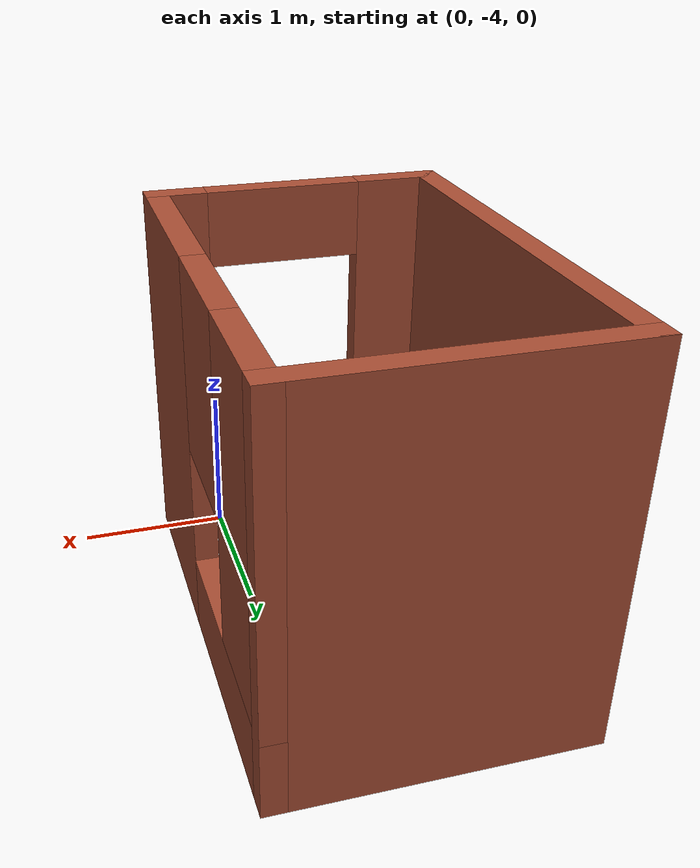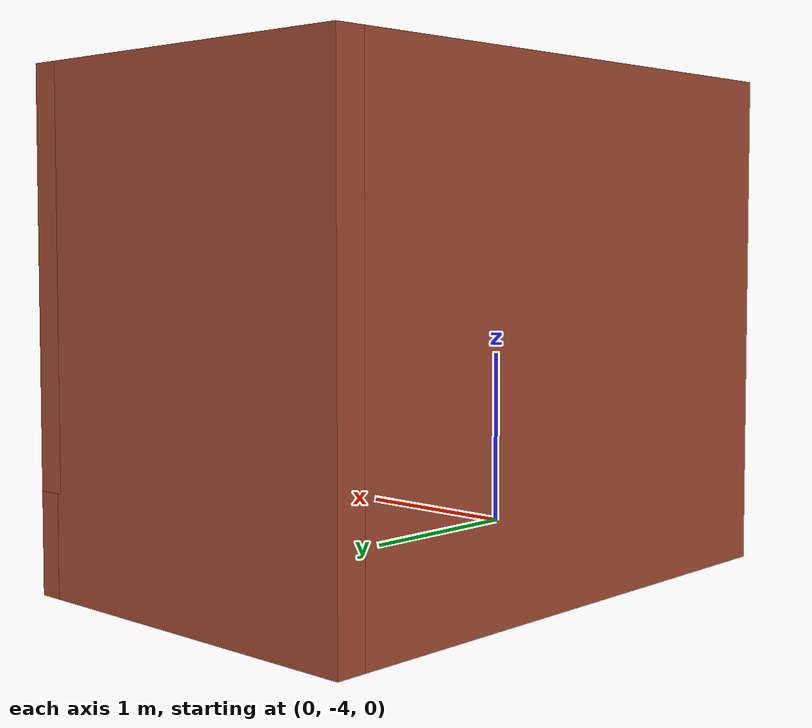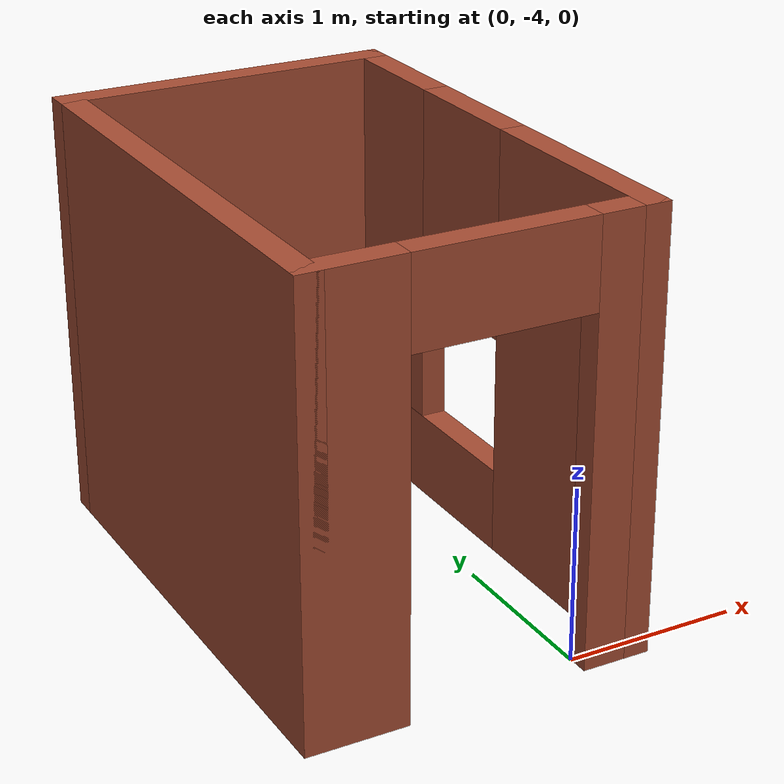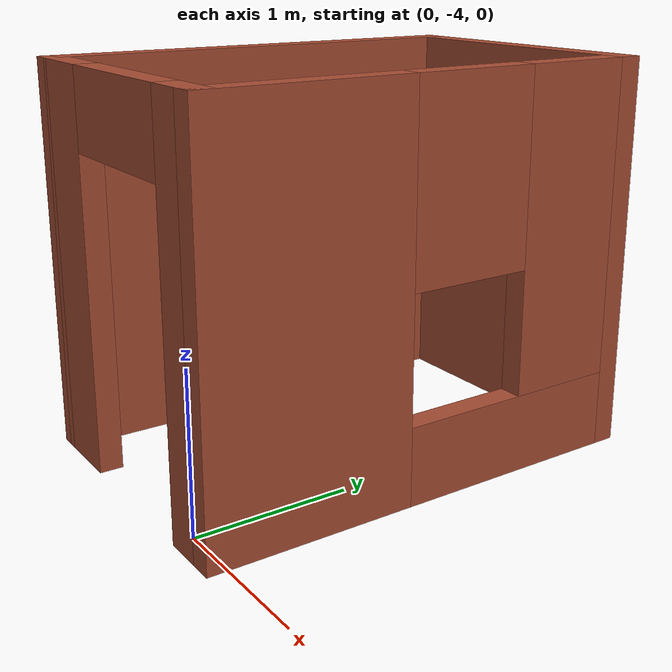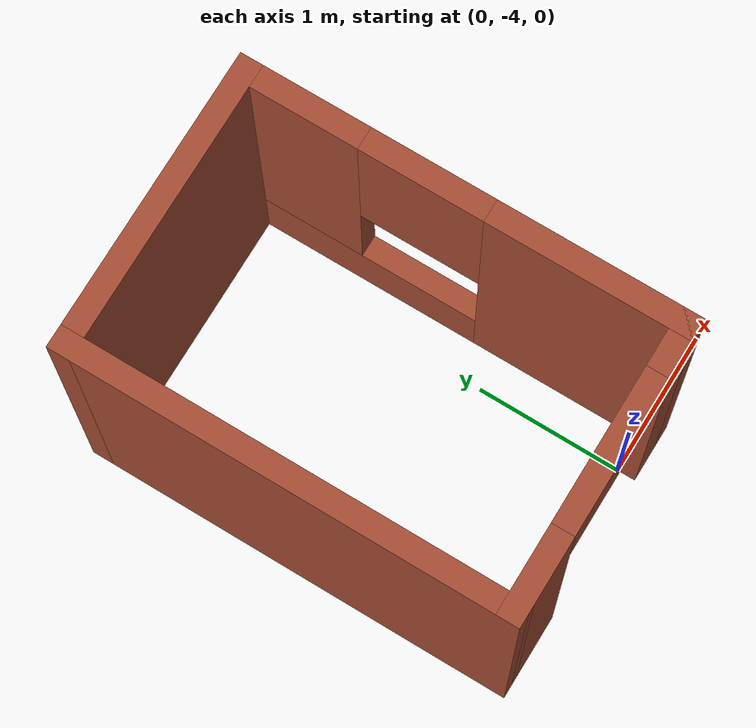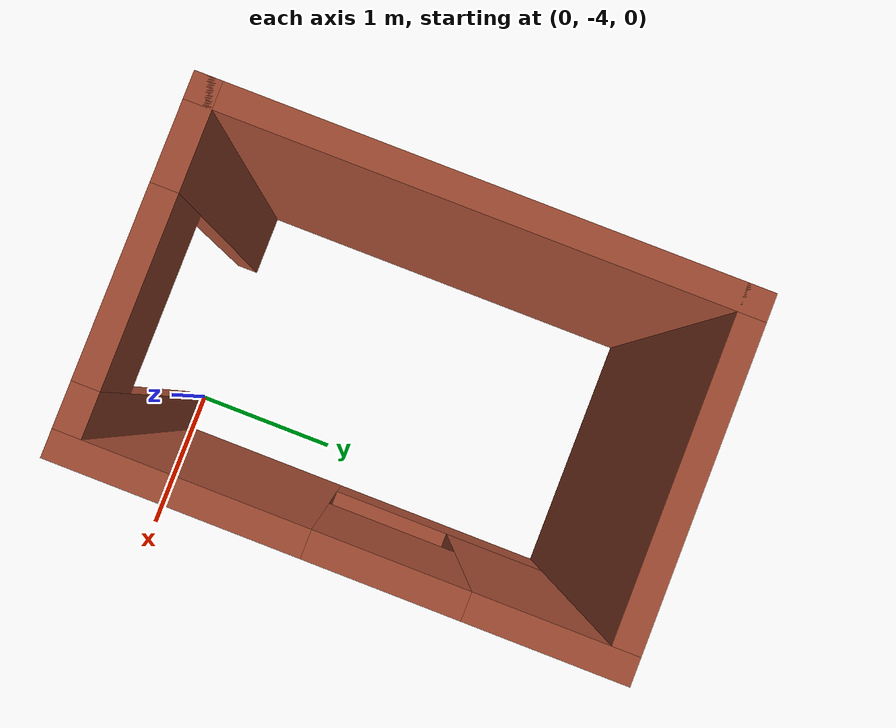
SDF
<?xml version='1.0'?>
<sdf version='1.7'>
  <model name='test_world'>
    <pose>-0.605 -2.0625 0 0 -0 0</pose>
    <link name='Wall_0'>
      <collision name='Wall_0_Collision'>
        <geometry>
          <box>
            <size>3 0.15 2.5</size>
          </box>
        </geometry>
        <pose>0 0 1.25 0 -0 0</pose>
      </collision>
      <visual name='Wall_0_Visual'>
        <pose>0 0 1.25 0 -0 0</pose>
        <geometry>
          <box>
            <size>3 0.15 2.5</size>
          </box>
        </geometry>
        <material>
          <script>
            <uri>file://media/materials/scripts/gazebo.material</uri>
            <name>Gazebo/Bricks</name>
          </script>
          <ambient>1 1 1 1</ambient>
        </material>
        <meta>
          <layer>0</layer>
        </meta>
      </visual>
      <pose>-0.925 -0.5625 0 0 -0 -1.5708</pose>
    </link>
    <link name='Wall_1'>
      <pose>-0 -1.9875 0 0 -0 0</pose>
      <visual name='Wall_1_Visual_0'>
        <pose>-0.708181 0 1.25 0 -0 0</pose>
        <geometry>
          <box>
            <size>0.583638 0.15 2.5</size>
          </box>
        </geometry>
        <material>
          <script>
            <uri>file://media/materials/scripts/gazebo.material</uri>
            <name>Gazebo/Bricks</name>
          </script>
          <ambient>1 1 1 1</ambient>
        </material>
        <meta>
          <layer>0</layer>
        </meta>
      </visual>
      <collision name='Wall_1_Collision_0'>
        <geometry>
          <box>
            <size>0.583638 0.15 2.5</size>
          </box>
        </geometry>
        <pose>-0.708181 0 1.25 0 -0 0</pose>
      </collision>
      <visual name='Wall_1_Visual_1'>
        <pose>0.802654 0 1.25 0 -0 0</pose>
        <geometry>
          <box>
            <size>0.394692 0.15 2.5</size>
          </box>
        </geometry>
        <material>
          <script>
            <uri>file://media/materials/scripts/gazebo.material</uri>
            <name>Gazebo/Bricks</name>
          </script>
          <ambient>1 1 1 1</ambient>
        </material>
        <meta>
          <layer>0</layer>
        </meta>
      </visual>
      <collision name='Wall_1_Collision_1'>
        <geometry>
          <box>
            <size>0.394692 0.15 2.5</size>
          </box>
        </geometry>
        <pose>0.802654 0 1.25 0 -0 0</pose>
      </collision>
      <visual name='Wall_1_Visual_2'>
        <pose>0.094473 0 2.25 0 -0 0</pose>
        <geometry>
          <box>
            <size>1.02167 0.15 0.5</size>
          </box>
        </geometry>
        <material>
          <script>
            <uri>file://media/materials/scripts/gazebo.material</uri>
            <name>Gazebo/Bricks</name>
          </script>
          <ambient>1 1 1 1</ambient>
        </material>
        <meta>
          <layer>0</layer>
        </meta>
      </visual>
      <collision name='Wall_1_Collision_2'>
        <geometry>
          <box>
            <size>1.02167 0.15 0.5</size>
          </box>
        </geometry>
        <pose>0.094473 0 2.25 0 -0 0</pose>
      </collision>
    </link>
    <link name='Wall_2'>
      <pose>0.925 -0.5625 0 0 -0 1.5708</pose>
      <visual name='Wall_2_Visual_0'>
        <pose>-0.836397 0 1.25 0 -0 0</pose>
        <geometry>
          <box>
            <size>1.32721 0.15 2.5</size>
          </box>
        </geometry>
        <material>
          <script>
            <uri>file://media/materials/scripts/gazebo.material</uri>
            <name>Gazebo/Bricks</name>
          </script>
          <ambient>1 1 1 1</ambient>
        </material>
        <meta>
          <layer>0</layer>
        </meta>
      </visual>
      <collision name='Wall_2_Collision_0'>
        <geometry>
          <box>
            <size>1.32721 0.15 2.5</size>
          </box>
        </geometry>
        <pose>-0.836397 0 1.25 0 -0 0</pose>
      </collision>
      <visual name='Wall_2_Visual_1'>
        <pose>0.663603 0 0.25 0 -0 0</pose>
        <geometry>
          <box>
            <size>1.67279 0.15 0.5</size>
          </box>
        </geometry>
        <material>
          <script>
            <uri>file://media/materials/scripts/gazebo.material</uri>
            <name>Gazebo/Bricks</name>
          </script>
          <ambient>1 1 1 1</ambient>
        </material>
        <meta>
          <layer>0</layer>
        </meta>
      </visual>
      <collision name='Wall_2_Collision_1'>
        <geometry>
          <box>
            <size>1.67279 0.15 0.5</size>
          </box>
        </geometry>
        <pose>0.663603 0 0.25 0 -0 0</pose>
      </collision>
      <visual name='Wall_2_Visual_2'>
        <pose>1.07121 0 1.5 0 -0 0</pose>
        <geometry>
          <box>
            <size>0.857585 0.15 2</size>
          </box>
        </geometry>
        <material>
          <script>
            <uri>file://media/materials/scripts/gazebo.material</uri>
            <name>Gazebo/Bricks</name>
          </script>
          <ambient>1 1 1 1</ambient>
        </material>
        <meta>
          <layer>0</layer>
        </meta>
      </visual>
      <collision name='Wall_2_Collision_2'>
        <geometry>
          <box>
            <size>0.857585 0.15 2</size>
          </box>
        </geometry>
        <pose>1.07121 0 1.5 0 -0 0</pose>
      </collision>
      <visual name='Wall_2_Visual_3'>
        <pose>0.234811 0 1.9 0 -0 0</pose>
        <geometry>
          <box>
            <size>0.815209 0.15 1.2</size>
          </box>
        </geometry>
        <material>
          <script>
            <uri>file://media/materials/scripts/gazebo.material</uri>
            <name>Gazebo/Bricks</name>
          </script>
          <ambient>1 1 1 1</ambient>
        </material>
        <meta>
          <layer>0</layer>
        </meta>
      </visual>
      <collision name='Wall_2_Collision_3'>
        <geometry>
          <box>
            <size>0.815209 0.15 1.2</size>
          </box>
        </geometry>
        <pose>0.234811 0 1.9 0 -0 0</pose>
      </collision>
    </link>
    <link name='Wall_3'>
      <collision name='Wall_3_Collision'>
        <geometry>
          <box>
            <size>2 0.15 2.5</size>
          </box>
        </geometry>
        <pose>0 0 1.25 0 -0 0</pose>
      </collision>
      <visual name='Wall_3_Visual'>
        <pose>0 0 1.25 0 -0 0</pose>
        <geometry>
          <box>
            <size>2 0.15 2.5</size>
          </box>
        </geometry>
        <material>
          <script>
            <uri>file://media/materials/scripts/gazebo.material</uri>
            <name>Gazebo/Bricks</name>
          </script>
          <ambient>1 1 1 1</ambient>
        </material>
        <meta>
          <layer>0</layer>
        </meta>
      </visual>
      <pose>-0 0.8625 0 0 -0 3.14159</pose>
    </link>
    <static>1</static>
  </model>
</sdf>
